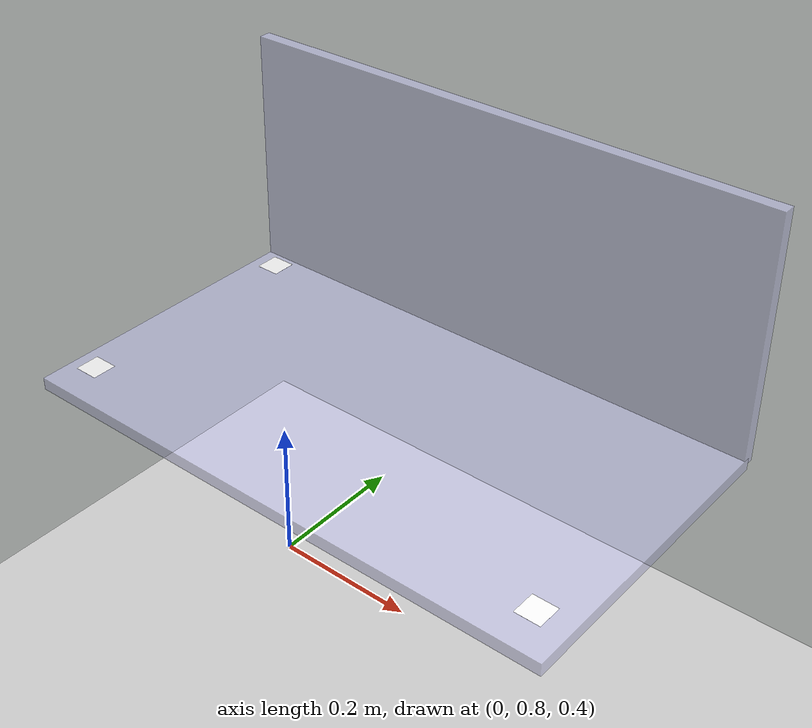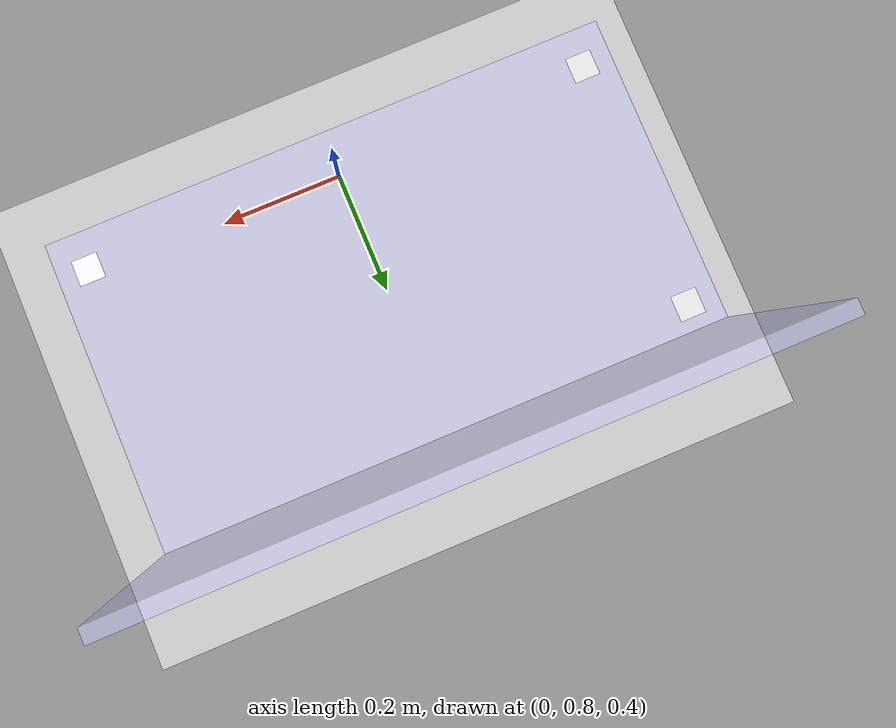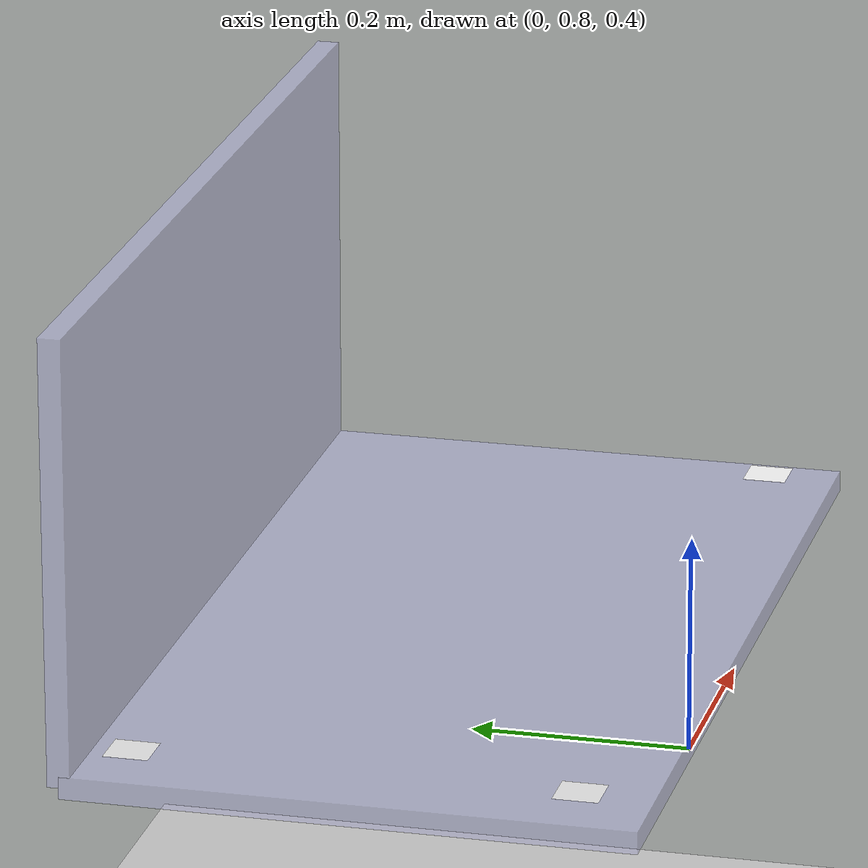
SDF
<?xml version="1.0" ?>

<sdf version="1.6">

  <world name="default">

    <!-- GUI カメラの設定 -->
    <gui>
      <camera name="user_camera">
        <!-- カメラの位置と向きを調整 -->
        <pose>1.0 -2.0 1.5 0.0 0.3 1.5</pose>
        <image>
          <width>800</width>
          <height>600</height>
        </image>
        <clip>
          <near>0.1</near>
          <far>100</far>
        </clip>
      </camera>
    </gui>

    <!-- 重力の設定 -->
    <gravity>0 0 -9.81</gravity>

    <!-- 物理エンジンの設定 -->
    <physics name="default_physics" default="0" type="ode">
      <max_step_size>0.001</max_step_size>
      <real_time_factor>1</real_time_factor>
      <real_time_update_rate>1000</real_time_update_rate>
    </physics>

    <!-- シーンの設定 -->
    <scene>
      <ambient>0.4 0.4 0.4 1</ambient>
      <background>0.7 0.7 0.7 1</background>
      <shadows>1</shadows>
    </scene>

    <!-- 光源の追加 -->
    <include>
      <uri>model://sun</uri>
    </include>

    <!-- 地面の追加 -->
    <include>
      <uri>model://ground_plane</uri>
      <pose>0 0 0 0 0 0</pose>
    </include>

    <!-- 仮想棚の追加 -->
    <model name="virtual_shelf">
      <static>true</static>
      <pose>0 1.0 0.5 0 0 0</pose> <!-- y=1.0m 前方に配置, z=0.5m 高さを下げる -->

      <!-- 棚の本体 -->
      <link name="shelf_main">
        <collision name="shelf_collision">
          <geometry>
            <box>
              <size>0.9 0.5 0.02</size> <!-- 幅0.9m, 奥行き0.5m, 高さ0.02m -->
            </box>
          </geometry>
          <surface>
            <friction>
              <ode>
                <mu>1.0</mu>
                <mu2>1.0</mu2>
              </ode>
            </friction>
          </surface>
        </collision>
        <visual name="shelf_visual">
          <geometry>
            <box>
              <size>0.9 0.5 0.02</size>
            </box>
          </geometry>
          <material>
            <!-- アクリル板風のマテリアルに変更 -->
            <script>
              <uri>file://media/materials/scripts/gazebo.material</uri>
              <name>Gazebo/Glass</name> <!-- Gazebo/Grey から Gazebo/Glass に変更 -->
            </script>
            <!-- より透明感のある色を設定 -->
            <ambient>0.8 0.8 1.0 1</ambient>
            <diffuse>0.8 0.8 1.0 1</diffuse>
            <specular>0.5 0.5 0.5 1</specular>
            <emissive>0 0 0 1</emissive>
          </material>
        </visual>
      </link>

      <!-- 棚の背面 -->
      <link name="shelf_back">
        <pose>0 0.25 0.2 0 0 0</pose>
        <collision name="shelf_back_collision">
          <geometry>
            <box>
              <size>0.9 0.02 0.4</size> <!-- 幅0.9m, 奥行き0.02m, 高さ0.4m -->
            </box>
          </geometry>
          <surface>
            <friction>
              <ode>
                <mu>1.0</mu>
                <mu2>1.0</mu2>
              </ode>
            </friction>
          </surface>
        </collision>
        <visual name="shelf_back_visual">
          <geometry>
            <box>
              <size>0.9 0.02 0.4</size>
            </box>
          </geometry>
          <material>
            <!-- アクリル板風のマテリアルに変更 -->
            <script>
              <uri>file://media/materials/scripts/gazebo.material</uri>
              <name>Gazebo/Glass</name>
            </script>
            <!-- より透明感のある色を設定 -->
            <ambient>0.8 0.8 1.0 1</ambient>
            <diffuse>0.8 0.8 1.0 1</diffuse>
            <specular>0.5 0.5 0.5 1</specular>
            <emissive>0 0 0 1</emissive>
          </material>
        </visual>
      </link>

      <!-- 棚のジョイント -->
      <joint name="shelf_main_to_back" type="fixed">
        <parent>shelf_main</parent>
        <child>shelf_back</child>
        <pose>0 0.25 0.2 0 0 0</pose>
      </joint>

    </model>

    <!-- ArUcoマーカーの追加 -->
    <!-- 棚の四つ角にマーカーを棚内部に配置 -->
    <!-- 棚内部に配置するため、棚のリンクに固定 -->
<!-- マーカーID 31: 左前内部 -->
<model name="aruco_marker_31">
  <static>true</static>
  <pose>-0.4 0.81 0.52 0 0 3.1415</pose> <!-- shelf_main の中心から x=-0.35, y=-0.2, z=0.51 -->
  <link name="marker_link_31">
    <visual name="marker_visual_31">
      <geometry>
        <plane>
          <size>0.04 0.04 0.01</size> <!-- マーカーサイズ5cm x 5cm -->
        </plane>
      </geometry>
      <material>
        <script>
          <uri>file://media/materials/scripts/gazebo.material</uri>
          <name>Gazebo/White</name>
        </script>
        <texture>file:///homes/yuki/catkin_ws/src/xarm_ros/xarm_gazebo/markers/4x4_1000-31.png</texture> <!-- 実際のパスに変更 -->
      </material>
    </visual>
  </link>
</model>

<!-- 以下、他のマーカーも同様に棚内部に配置 -->
<!-- マーカーID 32: 右前内部 -->
<model name="aruco_marker_32">
  <static>true</static>
  <pose>0.4 0.81 0.52 0 0 3.14159</pose>
  <link name="marker_link_32">
    <visual name="marker_visual_32">
      <geometry>
        <plane>
          <size>0.04 0.04</size>
        </plane>
      </geometry>
      <material>
        <ambient>1 1 1 1</ambient>
        <diffuse>1 1 1 1</diffuse>
        <specular>1 1 1 1</specular>
        <emissive>0 0 0 1</emissive>
        <texture>file://home/yuki/catkin_ws/src/xarm_ros/xarm_gazebo/markers/4x4_1000-32.png</texture>
      </material>
    </visual>
  </link>
</model>

<!-- マーカーID 33: 左後内部 -->
<model name="aruco_marker_33">
  <static>true</static>
  <pose>-0.4 1.2 0.52 0 0 0</pose>
  <link name="marker_link_33">
    <visual name="marker_visual_33">
      <geometry>
        <plane>
          <size>0.04 0.04</size>
        </plane>
      </geometry>
      <material>
        <script>
          <uri>file://media/materials/scripts/gazebo.material</uri>
          <name>Gazebo/White</name>
        </script>
        <texture>file://home/yuki/catkin_ws/src/xarm_ros/xarm_gazebo/markers/4x4_1000-33.png</texture>
      </material>
    </visual>
  </link>
</model>
  </world>

</sdf>
